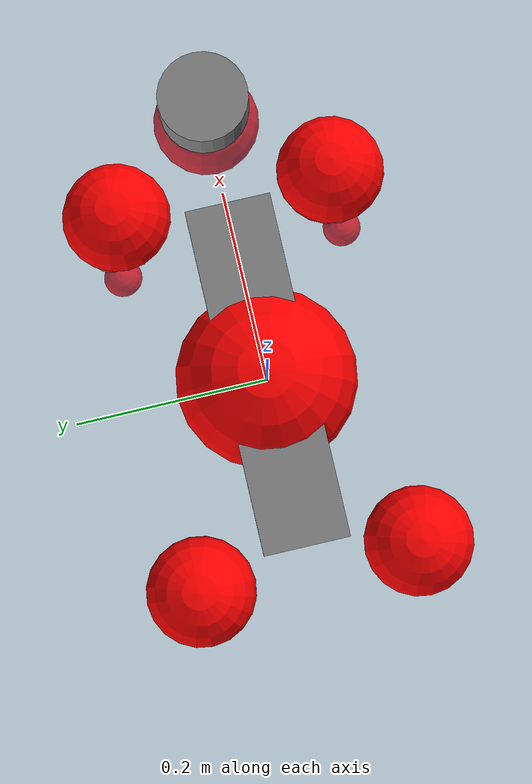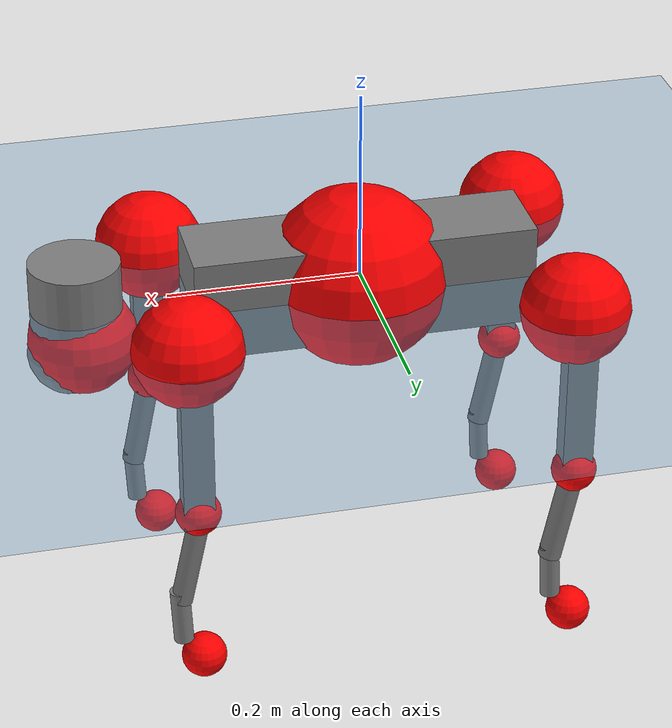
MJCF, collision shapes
<mujoco model="go2">
  <compiler angle="radian" assetdir="assets" balanceinertia="true" inertiafromgeom="false"/>

  <option timestep="0.005" density="1.2" viscosity="2e-05"/>

  <size nkey="1"/>

  <visual>
    <quality shadowsize="8192"/>
    <map shadowclip="0.5"/>
  </visual>

  <default>
    <default class="/">
      <geom contype="0" conaffinity="0" group="1" solref="-1000 -80"/>
      <site size="0.01 0.005 0.005" group="5"/>
      <general forcelimited="true" biastype="affine" gainprm="20" biasprm="0 -20 -0.5"/>
      <default class="go2">
        <joint armature="0.01" damping="0.01" frictionloss="0.2"/>
        <geom condim="1" margin="0.001"/>
        <default class="visual">
          <geom type="mesh" group="2"/>
        </default>
        <default class="collision">
          <geom group="3"/>
          <default class="foot">
            <geom size="0.022 0 0" condim="6" priority="1" friction="0.8 0.02 0.01" solimp="0.015 1 0.022"/>
          </default>
        </default>
        <default class="reward_collision_sphere">
          <geom group="5" rgba="1 0 0 1"/>
        </default>
      </default>
    </default>
  </default>

  <asset>
    <texture type="skybox" colorspace="auto" name="//unnamed_texture_0" builtin="gradient" rgb1="0.95 0.95 0.95" rgb2="0.95 0.95 0.95" width="100" height="600"/>
    <texture type="2d" colorspace="auto" name="texplane" builtin="checker" rgb1="0.345 0.575 0.748" rgb2="0.345 0.575 0.748" markrgb="1 1 1" width="512" height="512"/>
    <material name="MatPlane" class="/" texture="texplane" texuniform="true" texrepeat="2 2" specular="0.9"/>
    <material name="metal" class="/" rgba="0.9 0.95 0.95 1"/>
    <material name="black" class="/" rgba="0 0 0 1"/>
    <material name="white" class="/"/>
    <material name="gray" class="/" rgba="0.671705 0.692426 0.77427 1"/>
    <mesh name="base_0" class="/" file="base_0.obj"/>
    <mesh name="base_1" class="/" file="base_1.obj"/>
    <mesh name="base_2" class="/" file="base_2.obj"/>
    <mesh name="base_3" class="/" file="base_3.obj"/>
    <mesh name="base_4" class="/" file="base_4.obj"/>
    <mesh name="hip_0" class="/" file="hip_0.obj"/>
    <mesh name="hip_1" class="/" file="hip_1.obj"/>
    <mesh name="thigh_0" class="/" file="thigh_0.obj"/>
    <mesh name="thigh_1" class="/" file="thigh_1.obj"/>
    <mesh name="thigh_mirror_0" class="/" file="thigh_mirror_0.obj"/>
    <mesh name="thigh_mirror_1" class="/" file="thigh_mirror_1.obj"/>
    <mesh name="calf_0" class="/" file="calf_0.obj"/>
    <mesh name="calf_1" class="/" file="calf_1.obj"/>
    <mesh name="calf_mirror_0" class="/" file="calf_mirror_0.obj"/>
    <mesh name="calf_mirror_1" class="/" file="calf_mirror_1.obj"/>
    <mesh name="foot" class="/" file="foot.obj"/>
  </asset>

  <worldbody>
    <geom name="floor" class="/" size="100 100 0.125" type="plane" group="0" material="MatPlane"/>
    <light name="toplight_shadow" class="/" pos="0 0 5" dir="0.0990148 0.0990148 -0.990148" type="directional" ambient="0.04 0.04 0.04" diffuse="0.55 0.55 0.55" specular="0.12 0.12 0.12"/>
    <light name="toplight_fill" class="/" pos="0 0 5" dir="0.0990148 0.0990148 -0.990148" type="directional" castshadow="false" ambient="0.04 0.04 0.04" diffuse="0.3 0.3 0.3" specular="0.08 0.08 0.08"/>
    <body name="trunk" childclass="go2" pos="0.00263513 -0.000465772 -0.000106173" quat="0.999999 0.000429086 -0.000424114 -0.00114608">
      <inertial pos="0.0186373 -3.70098e-05 -0.00441233" quat="0.00107363 0.715645 -0.00378112 0.698453" mass="5.53226" diaginertia="0.115515 0.0821272 0.00997225"/>
      <joint name="//unnamed_joint_0" type="free" armature="0" damping="0" frictionloss="0"/>
      <geom name="//unnamed_geom_1" class="visual" material="black" mesh="base_0"/>
      <geom name="//unnamed_geom_2" class="visual" material="black" mesh="base_1"/>
      <geom name="//unnamed_geom_3" class="visual" material="black" mesh="base_2"/>
      <geom name="//unnamed_geom_4" class="visual" material="white" mesh="base_3"/>
      <geom name="//unnamed_geom_5" class="visual" material="gray" mesh="base_4"/>
      <geom name="trunk_1" class="collision" size="0.17695 0.0439788 0.0536212" type="box"/>
      <geom name="trunk_2" class="collision" size="0.0470362 0.0423325" pos="0.289782 0 0.00838641" type="cylinder"/>
      <geom name="trunk_3" class="collision" size="0.044214" pos="0.297916 0 -0.0503185"/>
      <geom name="//unnamed_geom_9" class="reward_collision_sphere" size="0.0940723"/>
      <geom name="//unnamed_geom_10" class="reward_collision_sphere" size="0.0564434" pos="0.284698 0 -0.0377388"/>
      <site name="imu" pos="-0.027722 0.00316654 0.0481577" size="0.00940723"/>
      <camera name="track" pos="0 -1.9335 0" quat="0.707107 0.707107 0 0" mode="trackcom"/>
      <camera name="ego_camera" pos="0.317235 0 0.0377388" quat="-0.5 -0.5 0.5 0.5"/>
      <body name="FL_hip" pos="0.197051 0.0465105 0.00180845" quat="1 -0.00010336 6.14661e-05 8.68688e-05">
        <inertial pos="-0.00655616 0.000439518 0.000538994" quat="0.496851 0.498971 0.505991 0.498136" mass="0.556638" diaginertia="0.000979813 0.000499677 0.00019889"/>
        <joint name="FL_hip_joint" pos="0 0 0" axis="0.999895 -0.00707543 -0.0126531" range="-0.996129 1.05046" armature="0.00930339" damping="0.0103786" frictionloss="0.189148"/>
        <geom name="//unnamed_geom_11" class="visual" material="metal" mesh="hip_0"/>
        <geom name="//unnamed_geom_12" class="visual" material="gray" mesh="hip_1"/>
        <geom name="//unnamed_geom_13" class="collision" size="0.0432733 0.0188145" pos="0 0.07734 0" quat="0.707107 0.707107 0 0" type="cylinder"/>
        <geom name="//unnamed_geom_14" class="reward_collision_sphere" size="0.0564434" pos="0 0.0676725 0"/>
        <body name="FL_thigh" pos="-0.00086653 0.0920881 0.00237832" quat="0.999999 0.000864957 -0.000479275 0.000407818">
          <inertial pos="-0.0024531 -0.0226815 -0.0298455" quat="0.829531 0.0847559 -0.0199987 0.55163" mass="0.931222" diaginertia="0.00634044 0.00484822 0.000367985"/>
          <joint name="FL_thigh_joint" pos="0 0 0" axis="0.00590481 0.999954 -0.00750204" range="-1.56383 3.49157" armature="0.00958581" damping="0.00753406" frictionloss="0.195022"/>
          <geom name="//unnamed_geom_15" class="visual" material="metal" mesh="thigh_0"/>
          <geom name="//unnamed_geom_16" class="visual" material="gray" mesh="thigh_1"/>
          <geom name="//unnamed_geom_17" class="collision" size="0.100187 0.0115239 0.0159923" pos="0 0 -0.0893153" quat="0.707107 0 0.707107 0" type="box"/>
          <body name="FL_calf" pos="-0.000839846 -0.00297985 -0.177943" quat="1 -0.000481492 9.94456e-05 -0.000211524">
            <inertial pos="0.00425038 -0.000316814 -0.116485" quat="0.709692 4.58745e-05 -0.00319306 0.704505" mass="0.200676" diaginertia="0.00165257 0.00129659 2.24886e-05"/>
            <joint name="FL_calf_joint" pos="0 0 0" axis="-0.00815953 0.999959 0.0039803" stiffness="0.00753617" range="-2.77598 -0.829369" armature="0.00957243" damping="0" frictionloss="0.192931"/>
            <geom name="//unnamed_geom_18" class="visual" material="gray" mesh="calf_0"/>
            <geom name="//unnamed_geom_19" class="visual" material="black" mesh="calf_1"/>
            <geom name="FL_calf0" class="collision" size="0.0112887 0.0564434" pos="0.00813423 0 -0.0503185" quat="0.994493 0 -0.104807 0" type="cylinder"/>
            <geom name="//unnamed_geom_21" class="collision" size="0.010348 0.0305735" pos="0.0203356 0 -0.124119" quat="0.999688 0 0.0249974 0" type="cylinder"/>
            <geom name="//unnamed_geom_22" class="visual" pos="0 0 -0.178631" quat="1 0 0 0" material="black" mesh="foot"/>
            <geom name="FL_foot" class="foot" size="0.0184668" pos="-0.00203356 0 -0.178631"/>
            <geom name="//unnamed_geom_24" class="reward_collision_sphere" size="0.0235181"/>
            <geom name="//unnamed_geom_25" class="reward_collision_sphere" size="0.0235181" pos="-0.00203356 0 -0.178631"/>
            <site name="FL_foot" class="foot" pos="-0.00203356 0 -0.178631" size="0.00940723"/>
          </body>
        </body>
      </body>
      <body name="FR_hip" pos="0.19678 -0.0459084 -0.00205329" quat="1 0.000752109 -0.000544893 -5.8276e-05">
        <inertial pos="-0.00461477 -0.00430419 -0.000470091" quat="0.507147 0.499203 0.495826 0.497749" mass="0.55856" diaginertia="0.000929073 0.000498128 0.000194025"/>
        <joint name="FR_hip_joint" pos="0 0 0" axis="0.999975 -0.00702322 -0.000917502" stiffness="0.00349144" range="-1.06512 1.05029" armature="0.0089755" damping="0.0159957" frictionloss="0.166237"/>
        <geom name="//unnamed_geom_26" class="visual" pos="0 1.11603e-09 4.78688e-08" quat="4.63268e-05 1 0 0" material="metal" mesh="hip_0"/>
        <geom name="//unnamed_geom_27" class="visual" pos="0 1.80922e-09 -1.18398e-07" quat="4.63268e-05 1 0 0" material="gray" mesh="hip_1"/>
        <geom name="//unnamed_geom_28" class="collision" size="0.0432733 0.0188145" pos="0 -0.07734 0" quat="0.707107 0.707107 0 0" type="cylinder"/>
        <geom name="//unnamed_geom_29" class="reward_collision_sphere" size="0.0564434" pos="0 -0.0676725 0"/>
        <body name="FR_thigh" pos="0.000597517 -0.0949497 -0.0012068" quat="1 0.000145997 -2.38722e-05 0.00033151">
          <inertial pos="-0.00274939 0.0197383 -0.0275681" quat="0.549999 -0.0239225 0.0899855 0.829959" mass="0.970625" diaginertia="0.00643086 0.00497472 0.000374057"/>
          <joint name="FR_thigh_joint" pos="0 0 0" axis="-0.0026804 -0.999996 -0.000354356" range="-3.48389 1.61188" armature="0.00943958" damping="0.0159205" frictionloss="0.187406"/>
          <geom name="//unnamed_geom_30" class="visual" material="metal" mesh="thigh_mirror_0"/>
          <geom name="//unnamed_geom_31" class="visual" material="gray" mesh="thigh_mirror_1"/>
          <geom name="//unnamed_geom_32" class="collision" size="0.100187 0.0115239 0.0159923" pos="0 0 -0.0893153" quat="0.707107 0 0.707107 0" type="box"/>
          <body name="FR_calf" pos="-0.000140347 -0.00265631 -0.178016" quat="1 3.53836e-06 -1.31519e-05 -2.17742e-05">
            <inertial pos="0.00662357 0.00113466 -0.118954" quat="0.708332 -0.0141349 0.00553651 0.705716" mass="0.199166" diaginertia="0.00161403 0.00123288 2.15175e-05"/>
            <joint name="FR_calf_joint" pos="0 0 0" axis="-0.0104309 -0.999912 -0.00821495" range="0.846246 2.75637" armature="0.00976819" damping="0.0232326" frictionloss="0.191859"/>
            <geom name="//unnamed_geom_33" class="visual" material="gray" mesh="calf_mirror_0"/>
            <geom name="//unnamed_geom_34" class="visual" material="black" mesh="calf_mirror_1"/>
            <geom name="FR_calf0" class="collision" size="0.0122294 0.0564434" pos="0.0101678 0 -0.0503185" quat="0.995004 0 -0.0998334 0" type="cylinder"/>
            <geom name="//unnamed_geom_36" class="collision" size="0.010348 0.0305735" pos="0.0203356 0 -0.124119" quat="0.999688 0 0.0249974 0" type="cylinder"/>
            <geom name="//unnamed_geom_37" class="visual" pos="0 0 -0.178631" quat="1 0 0 0" material="black" mesh="foot"/>
            <geom name="FR_foot" class="foot" size="0.022733" pos="-0.00203356 0 -0.178631"/>
            <geom name="//unnamed_geom_39" class="reward_collision_sphere" size="0.0235181"/>
            <geom name="//unnamed_geom_40" class="reward_collision_sphere" size="0.0235181" pos="-0.00203356 0 -0.178631"/>
            <site name="FR_foot" class="foot" pos="-0.00203356 0 -0.178631" size="0.00940723"/>
          </body>
        </body>
      </body>
      <body name="RL_hip" pos="-0.197574 0.0460928 -0.00204591" quat="1 -2.5299e-05 0.000559187 -0.00033691">
        <inertial pos="0.00484294 0.00485892 -0.00158962" quat="0.50267 0.490739 0.496818 0.509578" mass="0.575715" diaginertia="0.000952085 0.000495258 0.000202926"/>
        <joint name="RL_hip_joint" pos="0 0 0" axis="-0.999855 0.00854983 -0.0147487" stiffness="0.00780164" range="-1.04393 1.02539" armature="0.0084276" damping="0.0123642" frictionloss="0.211584"/>
        <geom name="//unnamed_geom_41" class="visual" pos="-1.55186e-09 0 -3.042e-07" quat="4.63268e-05 0 1 0" material="metal" mesh="hip_0"/>
        <geom name="//unnamed_geom_42" class="visual" pos="-2.51575e-09 0 -2.69782e-07" quat="4.63268e-05 0 1 0" material="gray" mesh="hip_1"/>
        <geom name="//unnamed_geom_43" class="collision" size="0.0432733 0.0188145" pos="0 0.07734 0" quat="0.707107 0.707107 0 0" type="cylinder"/>
        <geom name="//unnamed_geom_44" class="reward_collision_sphere" size="0.0564434" pos="0 0.0676725 0"/>
        <body name="RL_thigh" pos="-0.00038398 0.0890903 0.00205833" quat="1 1.40239e-05 -1.05909e-05 7.58711e-05">
          <inertial pos="-0.00377694 -0.0212614 -0.028263" quat="0.829923 0.0875645 -0.0218714 0.550529" mass="0.977673" diaginertia="0.00642453 0.00482652 0.000365897"/>
          <joint name="RL_thigh_joint" pos="0 0 0" axis="0.00887841 0.99996 0.000718023" stiffness="0.00961147" range="-0.51353 4.54409" armature="0.0102823" damping="0.00565836" frictionloss="0.188007"/>
          <geom name="//unnamed_geom_45" class="visual" material="metal" mesh="thigh_0"/>
          <geom name="//unnamed_geom_46" class="visual" material="gray" mesh="thigh_1"/>
          <geom name="//unnamed_geom_47" class="collision" size="0.100187 0.0115239 0.0159923" pos="0 0 -0.0893153" quat="0.707107 0 0.707107 0" type="box"/>
          <body name="RL_calf" pos="-5.80883e-05 -0.000256883 -0.181353" quat="1 0.000181642 -2.14637e-05 -0.000384285">
            <inertial pos="0.00709439 0.00220744 -0.117902" quat="0.710634 -0.000442523 -0.00607226 0.703536" mass="0.198958" diaginertia="0.00158986 0.00123149 2.10961e-05"/>
            <joint name="RL_calf_joint" pos="0 0 0" axis="-0.00034774 0.999991 0.0042638" range="-2.72346 -0.836353" armature="0.00973343" damping="0" frictionloss="0.213091"/>
            <geom name="//unnamed_geom_48" class="visual" material="gray" mesh="calf_0"/>
            <geom name="//unnamed_geom_49" class="visual" material="black" mesh="calf_1"/>
            <geom name="RL_calf0" class="collision" size="0.0122294 0.0564434" pos="0.0101678 0 -0.0503185" quat="0.995004 0 -0.0998334 0" type="cylinder"/>
            <geom name="//unnamed_geom_51" class="collision" size="0.010348 0.0305735" pos="0.0203356 0 -0.124119" quat="0.999688 0 0.0249974 0" type="cylinder"/>
            <geom name="//unnamed_geom_52" class="visual" pos="0 0 -0.178631" quat="1 0 0 0" material="black" mesh="foot"/>
            <geom name="RL_foot" class="foot" size="0.0173084" pos="-0.00203356 0 -0.178631"/>
            <geom name="//unnamed_geom_54" class="reward_collision_sphere" size="0.0235181"/>
            <geom name="//unnamed_geom_55" class="reward_collision_sphere" size="0.0235181" pos="-0.00203356 0 -0.178631"/>
            <site name="RL_foot" class="foot" pos="-0.00203356 0 -0.178631" size="0.00940723"/>
          </body>
        </body>
      </body>
      <body name="RR_hip" pos="-0.197262 -0.0458378 -0.000665322" quat="0.999999 0.000486015 0.000946885 0.000474615">
        <inertial pos="0.00805078 8.57452e-05 -0.00279704" quat="0.503184 0.495873 0.501556 0.499356" mass="0.563824" diaginertia="0.000960913 0.000500873 0.000198568"/>
        <joint name="RR_hip_joint" pos="0 0 0" axis="-0.999901 0.0140919 -4.18487e-05" stiffness="0.0034402" range="-1.05757 1.03583" armature="0.00933563" damping="0.01391" frictionloss="0.180429"/>
        <geom name="//unnamed_geom_56" class="visual" pos="1.55013e-09 1.11603e-09 -3.52069e-07" quat="2.14617e-09 4.63268e-05 4.63268e-05 -1" material="metal" mesh="hip_0"/>
        <geom name="//unnamed_geom_57" class="visual" pos="2.52003e-09 1.80922e-09 -1.51384e-07" quat="2.14617e-09 4.63268e-05 4.63268e-05 -1" material="gray" mesh="hip_1"/>
        <geom name="//unnamed_geom_58" class="collision" size="0.0432733 0.0188145" pos="0 -0.07734 0" quat="0.707107 0.707107 0 0" type="cylinder"/>
        <geom name="//unnamed_geom_59" class="reward_collision_sphere" size="0.0564434" pos="0 -0.0676725 0"/>
        <body name="RR_thigh" pos="0.00105659 -0.0916766 -0.00260546" quat="1 -5.55066e-05 0.000264132 -0.000179742">
          <inertial pos="-0.00312265 0.0212848 -0.0274486" quat="0.552491 -0.020075 0.0845317 0.828978" mass="0.932038" diaginertia="0.00653015 0.00502327 0.000364623"/>
          <joint name="RR_thigh_joint" pos="0 0 0" axis="-0.0115397 -0.999909 -0.00703682" range="-4.53299 0.572089" armature="0.0093515" damping="0.0110449" frictionloss="0.180097"/>
          <geom name="//unnamed_geom_60" class="visual" material="metal" mesh="thigh_mirror_0"/>
          <geom name="//unnamed_geom_61" class="visual" material="gray" mesh="thigh_mirror_1"/>
          <geom name="//unnamed_geom_62" class="collision" size="0.100187 0.0115239 0.0159923" pos="0 0 -0.0893153" quat="0.707107 0 0.707107 0" type="box"/>
          <body name="RR_calf" pos="-0.00097716 0.000169367 -0.178909" quat="1 4.1573e-05 -7.87629e-05 0.000192871">
            <inertial pos="0.00443077 0.000235536 -0.118792" quat="0.703066 -0.00711314 4.80395e-05 0.711089" mass="0.199482" diaginertia="0.00160529 0.00123835 2.26221e-05"/>
            <joint name="RR_calf_joint" pos="0 0 0" axis="-0.0190653 -0.999818 -0.000139197" range="0.856503 2.7323" armature="0.00993107" damping="0.0230626" frictionloss="0.197991"/>
            <geom name="//unnamed_geom_63" class="visual" material="gray" mesh="calf_mirror_0"/>
            <geom name="//unnamed_geom_64" class="visual" material="black" mesh="calf_mirror_1"/>
            <geom name="RR_calf0" class="collision" size="0.0122294 0.0564434" pos="0.0101678 0 -0.0503185" quat="0.995004 0 -0.0998334 0" type="cylinder"/>
            <geom name="//unnamed_geom_66" class="collision" size="0.010348 0.0305735" pos="0.0203356 0 -0.124119" quat="0.999688 0 0.0249974 0" type="cylinder"/>
            <geom name="//unnamed_geom_67" class="visual" pos="0 0 -0.178631" quat="1 0 0 0" material="black" mesh="foot"/>
            <geom name="RR_foot" class="foot" size="0.0213235" pos="-0.00203356 0 -0.178631"/>
            <geom name="//unnamed_geom_69" class="reward_collision_sphere" size="0.0235181"/>
            <geom name="//unnamed_geom_70" class="reward_collision_sphere" size="0.0235181" pos="-0.00203356 0 -0.178631"/>
            <site name="RR_foot" class="foot" pos="-0.00203356 0 -0.178631" size="0.00940723"/>
          </body>
        </body>
      </body>
    </body>
  </worldbody>

  <contact>
    <pair class="/" geom1="floor" geom2="FL_foot" name="//unnamed_contact_0"/>
    <pair class="/" geom1="floor" geom2="FR_foot" name="//unnamed_contact_1"/>
    <pair class="/" geom1="floor" geom2="RL_foot" name="//unnamed_contact_2"/>
    <pair class="/" geom1="floor" geom2="RR_foot" name="//unnamed_contact_3"/>
  </contact>

  <actuator>
    <general name="FL_hip" class="/" joint="FL_hip_joint" forcerange="-22.1492 22.1492" gainprm="19.3476" biasprm="0 -19.3476 -0.449898"/>
    <general name="FL_thigh" class="/" joint="FL_thigh_joint" forcerange="-21.8957 21.8957" gainprm="19.3476" biasprm="0 -19.3476 -0.449898"/>
    <general name="FL_calf" class="/" joint="FL_calf_joint" forcerange="-43.2528 43.2528" gainprm="19.3476" biasprm="0 -19.3476 -0.449898"/>
    <general name="FR_hip" class="/" joint="FR_hip_joint" forcerange="-21.8866 21.8866" gainprm="19.3476" biasprm="0 -19.3476 -0.449898"/>
    <general name="FR_thigh" class="/" joint="FR_thigh_joint" forcerange="-22.7249 22.7249" gainprm="19.3476" biasprm="0 -19.3476 -0.449898"/>
    <general name="FR_calf" class="/" joint="FR_calf_joint" forcerange="-42.2907 42.2907" gainprm="19.3476" biasprm="0 -19.3476 -0.449898"/>
    <general name="RL_hip" class="/" joint="RL_hip_joint" forcerange="-24.4702 24.4702" gainprm="19.3476" biasprm="0 -19.3476 -0.449898"/>
    <general name="RL_thigh" class="/" joint="RL_thigh_joint" forcerange="-22.2464 22.2464" gainprm="19.3476" biasprm="0 -19.3476 -0.449898"/>
    <general name="RL_calf" class="/" joint="RL_calf_joint" forcerange="-38.5326 38.5326" gainprm="19.3476" biasprm="0 -19.3476 -0.449898"/>
    <general name="RR_hip" class="/" joint="RR_hip_joint" forcerange="-21.0328 21.0328" gainprm="19.3476" biasprm="0 -19.3476 -0.449898"/>
    <general name="RR_thigh" class="/" joint="RR_thigh_joint" forcerange="-24.4618 24.4618" gainprm="19.3476" biasprm="0 -19.3476 -0.449898"/>
    <general name="RR_calf" class="/" joint="RR_calf_joint" forcerange="-41.0388 41.0388" gainprm="19.3476" biasprm="0 -19.3476 -0.449898"/>
  </actuator>

  <sensor>
    <gyro site="imu" name="imu_angular_velocity"/>
    <velocimeter site="imu" name="imu_linear_velocity"/>
    <framelinvel objtype="site" objname="FL_foot" name="FL_foot_global_linear_velocity"/>
    <framelinvel objtype="site" objname="FR_foot" name="FR_foot_global_linear_velocity"/>
    <framelinvel objtype="site" objname="RL_foot" name="RL_foot_global_linear_velocity"/>
    <framelinvel objtype="site" objname="RR_foot" name="RR_foot_global_linear_velocity"/>
  </sensor>

  <keyframe>
    <key name="home" qpos="0 0 0.325 1 0 0 0 0.1 0.8 -1.5 -0.1 -0.8 1.5 -0.1 0.8 -1.5 0.1 -0.8 1.5"/>
  </keyframe>
</mujoco>
